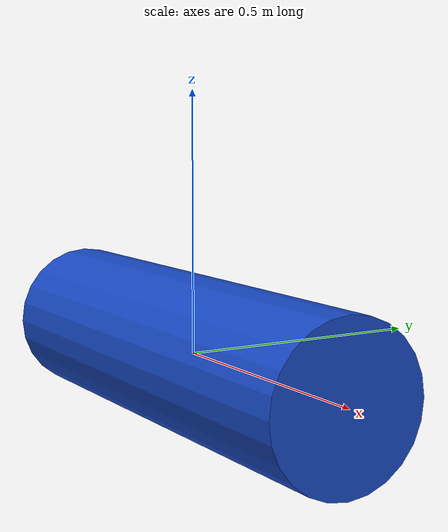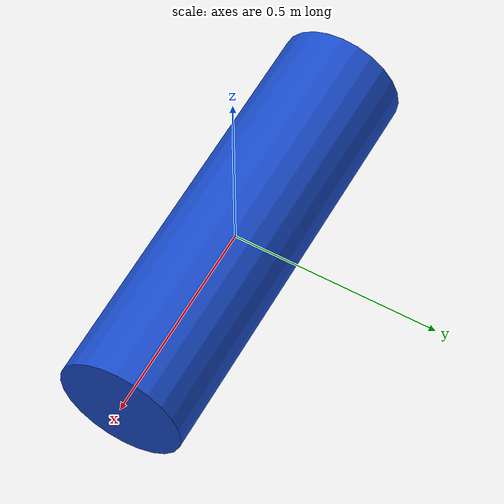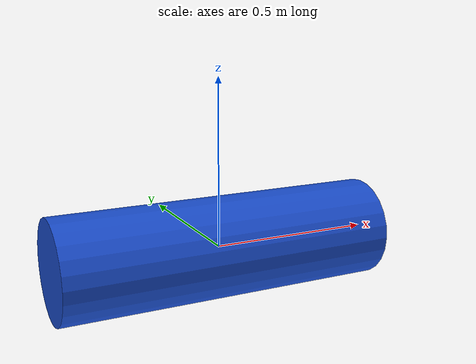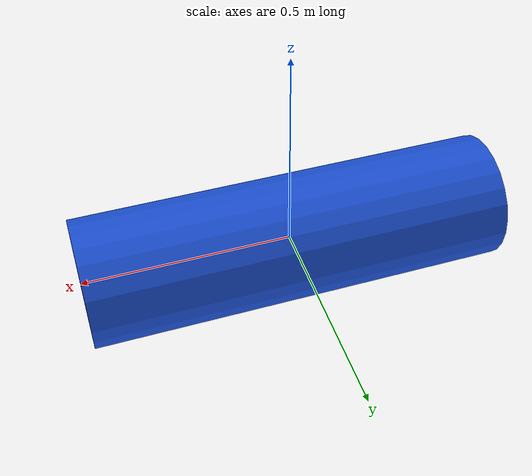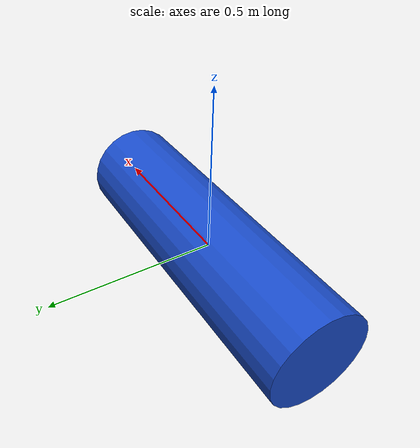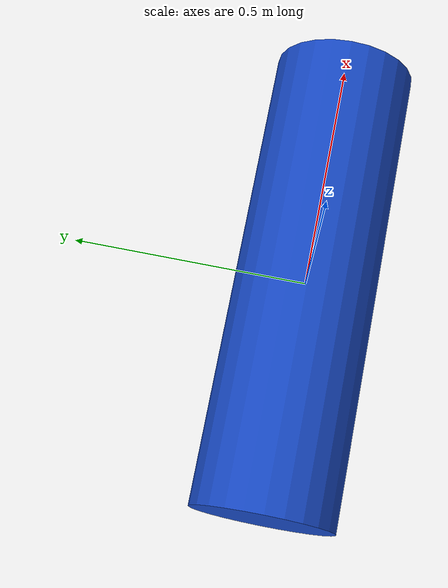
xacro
<?xml version="1.0"?>

<robot name="simple_auv"
       xmlns:xacro="http://www.ros.org/wiki/xacro">

  <!-- AUV size and mass parameters -->
  <xacro:property name="auv_length" value="1.0"/>
  <xacro:property name="auv_radius" value="0.15"/>
  <xacro:property name="auv_mass" value="20.0"/>

  <!-- Main body of the AUV -->
  <link name="base_link">

    <!-- Visual model: cylinder -->
    <visual>

      <!-- Cylinder is along z by default, rotate it to x direction -->
      <origin xyz="0 0 0"
              rpy="0 1.57079632679 0"/>

      <geometry>
        <cylinder
          radius="${auv_radius}"
          length="${auv_length}"/>
      </geometry>

      <material name="blue">
        <color rgba="0.1 0.3 0.8 1.0"/>
      </material>

    </visual>

    <!-- Collision model: cylinder -->
    <collision>

      <origin xyz="0 0 0"
              rpy="0 1.57079632679 0"/>

      <geometry>
        <cylinder
          radius="${auv_radius}"
          length="${auv_length}"/>
      </geometry>

    </collision>

    <!-- Mass and inertia -->
    <inertial>

      <origin xyz="0 0 0"
              rpy="0 0 0"/>

      <mass value="${auv_mass}"/>

      <!-- Inertia of a cylinder whose main axis is x -->
      <inertia
        ixx="${0.5 * auv_mass * auv_radius * auv_radius}"
        ixy="0.0"
        ixz="0.0"
        iyy="${(1.0 / 12.0) * auv_mass *
              (3.0 * auv_radius * auv_radius +
               auv_length * auv_length)}"
        iyz="0.0"
        izz="${(1.0 / 12.0) * auv_mass *
              (3.0 * auv_radius * auv_radius +
               auv_length * auv_length)}"/>

    </inertial>

  </link>

</robot>
